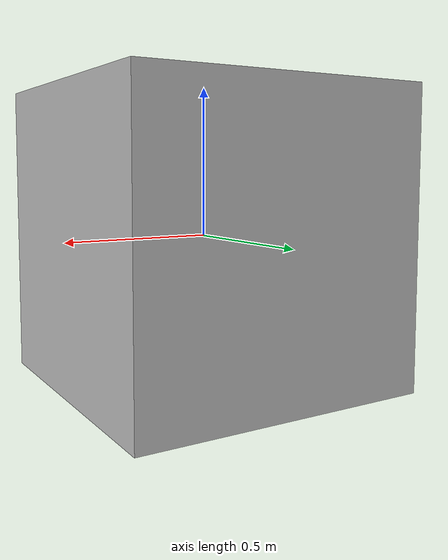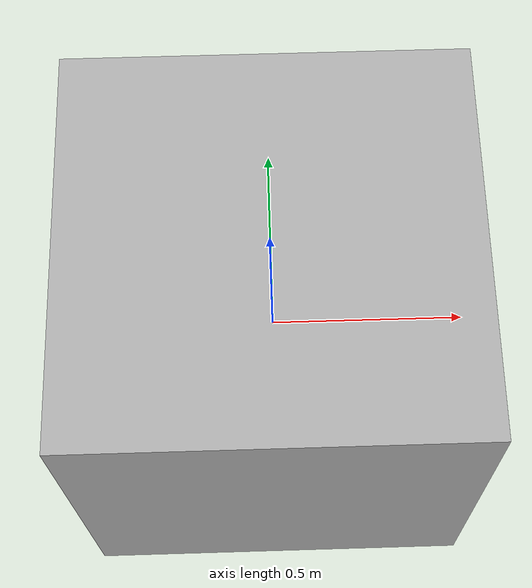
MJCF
<mujoco model="spacerobot_collision">
  <compiler angle="radian" meshdir="meshes/ur10e/collision/"/>
  <option cone="elliptic" gravity="0 0 0" impratio="5" timestep="0.01" tolerance="1e-10"/>

  <asset>
    <mesh name="base_mesh"      file="base.stl"/>
    <mesh name="shoulder_mesh"  file="shoulder.stl"/>
    <mesh name="upperarm_mesh"  file="upperarm.stl"/>
    <mesh name="forearm_mesh"   file="forearm.stl"/>
    <mesh name="wrist1_mesh"    file="wrist1.stl"/>
    <mesh name="wrist2_mesh"    file="wrist2.stl"/>
    <mesh name="wrist3_mesh"    file="wrist3.stl"/>
  </asset>

  <worldbody>
    <body name="base_link" pos="0 0 0">
      <freejoint/>
      <inertial pos="0 0 0" mass="104" diaginertia="16.676106 16.676106 16.67125"/>
      <geom name="base_box" size="0.5 0.5 0.5" type="box" group="1" density="0" rgba="0.7 0.7 0.7 1"/>
      <geom name="base_col" type="mesh" mesh="base_mesh" pos="0 0 0.5" group="3" density="0" rgba="0.7 0.7 0.7 0.3"/>

      <body name="shoulder_link" pos="0 0 0.581">
        <inertial pos="0 0 0" mass="7.778" diaginertia="0.0315 0.0315 0.02188"/>
        <joint name="shoulder_pan_joint" axis="0 0 1" range="-100 100" actuatorfrcrange="-330 330"/>
        <geom name="shoulder_col" type="mesh" mesh="shoulder_mesh" group="3" density="0" rgba="0.3 0.6 0.9 0.3"/>

        <body name="upper_arm_link" pos="0 0.176 0">
          <inertial pos="0 0 0.3065" mass="12.93" diaginertia="0.42307 0.42307 0.0364"/>
          <joint name="shoulder_lift_joint" axis="0 1 0" range="-100 100" actuatorfrcrange="-330 330"/>
          <geom name="upperarm_col" type="mesh" mesh="upperarm_mesh" group="3" density="0" rgba="0.3 0.6 0.9 0.3"/>

          <body name="forearm_link" pos="0 -0.137 0.613">
            <inertial pos="0 0 0.2855" mass="3.87" diaginertia="0.11059 0.11059 0.01088"/>
            <joint name="elbow_joint" axis="0 1 0" range="-100 100" actuatorfrcrange="-150 150"/>
            <geom name="forearm_col" type="mesh" mesh="forearm_mesh" group="3" density="0" rgba="0.3 0.6 0.9 0.3"/>

            <body name="wrist_1_link" pos="0 0 0.571" quat="0.707107 0 0.707107 0">
              <inertial pos="0 0.135 0" mass="1.96" diaginertia="0.005108 0.005108 0.0055125"/>
              <joint name="wrist_1_joint" axis="0 1 0" range="-100 100" actuatorfrcrange="-54 54"/>
              <geom name="wrist1_col" type="mesh" mesh="wrist1_mesh" group="3" density="0" rgba="0.9 0.5 0.2 0.3"/>

              <body name="wrist_2_link" pos="0 0.135 0">
                <inertial pos="0 0 0.12" mass="1.96" diaginertia="0.005108 0.005108 0.0055125"/>
                <joint name="wrist_2_joint" axis="0 0 1" range="-100 100" actuatorfrcrange="-54 54"/>
                <geom name="wrist2_col" type="mesh" mesh="wrist2_mesh" group="3" density="0" rgba="0.9 0.5 0.2 0.3"/>

                <body name="wrist_3_link" pos="0 0 0.12">
                  <inertial pos="0 0.092 0" quat="0.7071068 0.7071068 0 0" mass="10.202" diaginertia="0.010144 0.010144 0.010205"/>
                  <joint name="wrist_3_joint" axis="0 1 0" range="-100 100" actuatorfrcrange="-54 54"/>
                  <geom name="wrist3_col" type="mesh" mesh="wrist3_mesh" group="3" density="0" rgba="0.9 0.5 0.2 0.3"/>
                </body>
              </body>
            </body>
          </body>
        </body>
      </body>
    </body>
  </worldbody>

  <!-- 인접/근접 링크 쌍 충돌 제외 (parent-child + 1-hop) -->
  <contact>
    <exclude body1="base_link"      body2="shoulder_link"/>
    <exclude body1="base_link"      body2="upper_arm_link"/>
    <exclude body1="shoulder_link"  body2="upper_arm_link"/>
    <exclude body1="upper_arm_link" body2="forearm_link"/>
    <exclude body1="forearm_link"   body2="wrist_1_link"/>
    <exclude body1="wrist_1_link"   body2="wrist_2_link"/>
    <exclude body1="wrist_2_link"   body2="wrist_3_link"/>
  </contact>

  <actuator>
    <general ctrllimited="true" ctrlrange="-330 330" forcelimited="true" forcerange="-330 330" joint="shoulder_pan_joint" name="shoulder_pan_T"/>
    <general ctrllimited="true" ctrlrange="-330 330" forcelimited="true" forcerange="-330 330" joint="shoulder_lift_joint" name="shoulder_lift_T"/>
    <general ctrllimited="true" ctrlrange="-150 150" forcelimited="true" forcerange="-150 150" joint="elbow_joint" name="elbow_T"/>
    <general ctrllimited="true" ctrlrange="-54 54" forcelimited="true" forcerange="-54 54" joint="wrist_1_joint" name="wrist_1_T"/>
    <general ctrllimited="true" ctrlrange="-54 54" forcelimited="true" forcerange="-54 54" joint="wrist_2_joint" name="wrist_2_T"/>
    <general ctrllimited="true" ctrlrange="-54 54" forcelimited="true" forcerange="-54 54" joint="wrist_3_joint" name="wrist_3_T"/>
  </actuator>

  <sensor>
    <jointpos joint="shoulder_pan_joint" name="shoulder_pan_pos"/>
    <jointpos joint="shoulder_lift_joint" name="shoulder_lift_pos"/>
    <jointpos joint="elbow_joint" name="elbow_pos"/>
    <jointpos joint="wrist_1_joint" name="wrist_1_pos"/>
    <jointpos joint="wrist_2_joint" name="wrist_2_pos"/>
    <jointpos joint="wrist_3_joint" name="wrist_3_pos"/>

    <jointvel joint="shoulder_pan_joint" name="shoulder_pan_vel"/>
    <jointvel joint="shoulder_lift_joint" name="shoulder_lift_vel"/>
    <jointvel joint="elbow_joint" name="elbow_vel"/>
    <jointvel joint="wrist_1_joint" name="wrist_1_vel"/>
    <jointvel joint="wrist_2_joint" name="wrist_2_vel"/>
    <jointvel joint="wrist_3_joint" name="wrist_3_vel"/>
  </sensor>
</mujoco>
